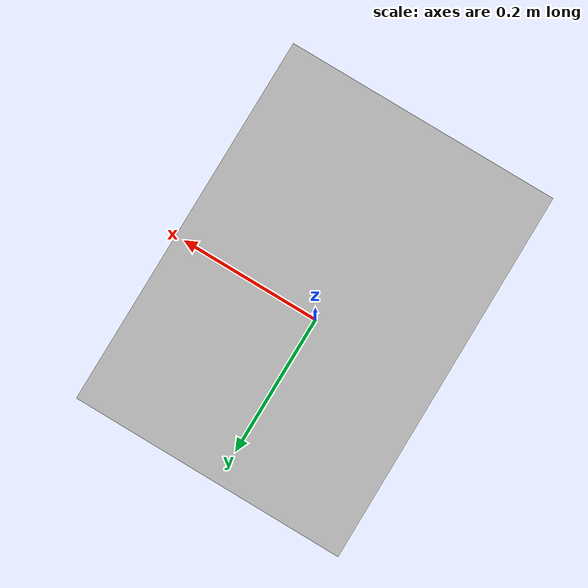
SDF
<?xml version="1.0"?>
<sdf version="1.6">
  <model name="box">
    <static>true</static>

    <link name="main_link">

      <visual name="visual">
        <geometry>
          <mesh><uri>model://box/meshes/box.dae</uri></mesh>
        </geometry>
      </visual>

      <collision name="collision">
        <geometry>
          <mesh><uri>model://box/meshes/box.dae</uri></mesh>
        </geometry>
      </collision>

    </link>
  </model>
</sdf>
